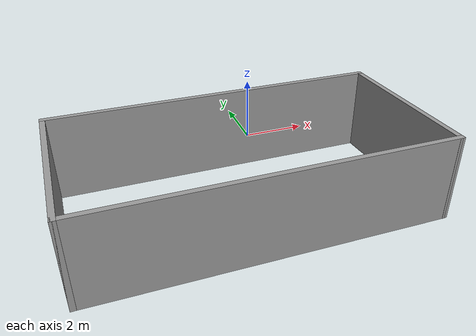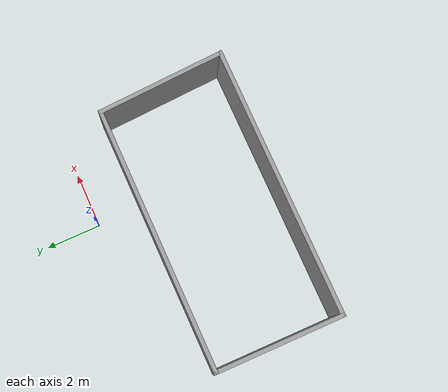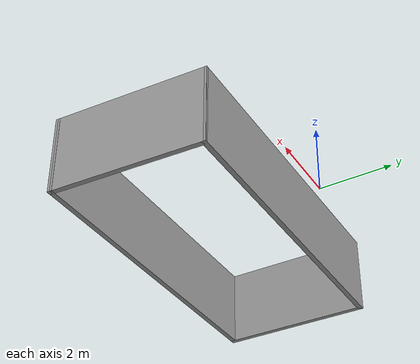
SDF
<?xml version='1.0'?>
<sdf version='1.7'>
  <model name='room'>
    <pose>-1.50302 -3.15948 0 0 -0 0</pose>
    <link name='Wall_0'>
      <collision name='Wall_0_Collision'>
        <geometry>
          <box>
            <size>9.75 0.15 2.5</size>
          </box>
        </geometry>
        <pose>0 0 1.25 0 -0 0</pose>
      </collision>
      <visual name='Wall_0_Visual'>
        <pose>0 0 1.25 0 -0 0</pose>
        <geometry>
          <box>
            <size>9.75 0.15 2.5</size>
          </box>
        </geometry>
        <material>
          <script>
            <uri>file://media/materials/scripts/gazebo.material</uri>
            <name>Gazebo/Grey</name>
          </script>
          <ambient>1 1 1 1</ambient>
        </material>
        <meta>
          <layer>0</layer>
        </meta>
      </visual>
      <pose>-0.12698 1.51948 0 0 -0 3.14159</pose>
    </link>
    <link name='Wall_2'>
      <collision name='Wall_2_Collision'>
        <geometry>
          <box>
            <size>4.75 0.15 2.5</size>
          </box>
        </geometry>
        <pose>0 0 1.25 0 -0 0</pose>
      </collision>
      <visual name='Wall_2_Visual'>
        <pose>0 0 1.25 0 -0 0</pose>
        <geometry>
          <box>
            <size>4.75 0.15 2.5</size>
          </box>
        </geometry>
        <material>
          <script>
            <uri>file://media/materials/scripts/gazebo.material</uri>
            <name>Gazebo/Grey</name>
          </script>
          <ambient>1 1 1 1</ambient>
        </material>
        <meta>
          <layer>0</layer>
        </meta>
      </visual>
      <pose>-4.92698 -0.78052 0 0 -0 -1.5708</pose>
    </link>
    <link name='Wall_3'>
      <collision name='Wall_3_Collision'>
        <geometry>
          <box>
            <size>10 0.15 2.5</size>
          </box>
        </geometry>
        <pose>0 0 1.25 0 -0 0</pose>
      </collision>
      <visual name='Wall_3_Visual'>
        <pose>0 0 1.25 0 -0 0</pose>
        <geometry>
          <box>
            <size>10 0.15 2.5</size>
          </box>
        </geometry>
        <material>
          <script>
            <uri>file://media/materials/scripts/gazebo.material</uri>
            <name>Gazebo/Grey</name>
          </script>
          <ambient>1 1 1 1</ambient>
        </material>
        <meta>
          <layer>0</layer>
        </meta>
      </visual>
      <pose>-0.00198 -3.08052 0 0 -0 0</pose>
    </link>
    <link name='Wall_4'>
      <collision name='Wall_4_Collision'>
        <geometry>
          <box>
            <size>4.75679 0.15 2.5</size>
          </box>
        </geometry>
        <pose>0 0 1.25 0 -0 0</pose>
      </collision>
      <visual name='Wall_4_Visual'>
        <pose>0 0 1.25 0 -0 0</pose>
        <geometry>
          <box>
            <size>4.75679 0.15 2.5</size>
          </box>
        </geometry>
        <material>
          <script>
            <uri>file://media/materials/scripts/gazebo.material</uri>
            <name>Gazebo/Grey</name>
          </script>
          <ambient>1 1 1 1</ambient>
        </material>
        <meta>
          <layer>0</layer>
        </meta>
      </visual>
      <pose>4.79802 -0.78052 0 0 -0 1.62509</pose>
    </link>
    <static>1</static>
  </model>
</sdf>
